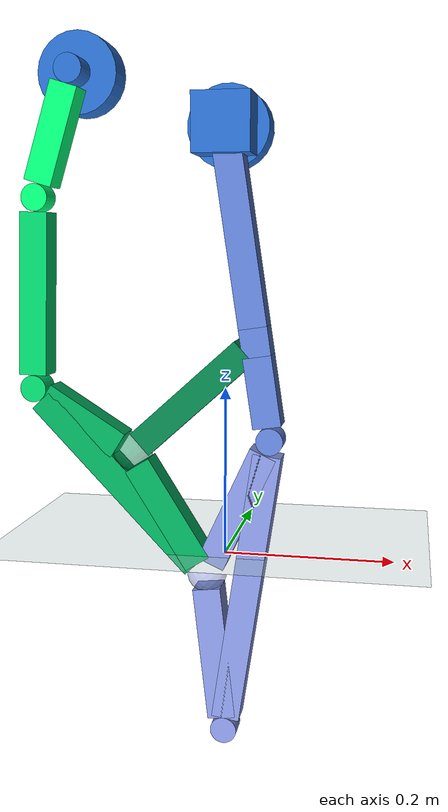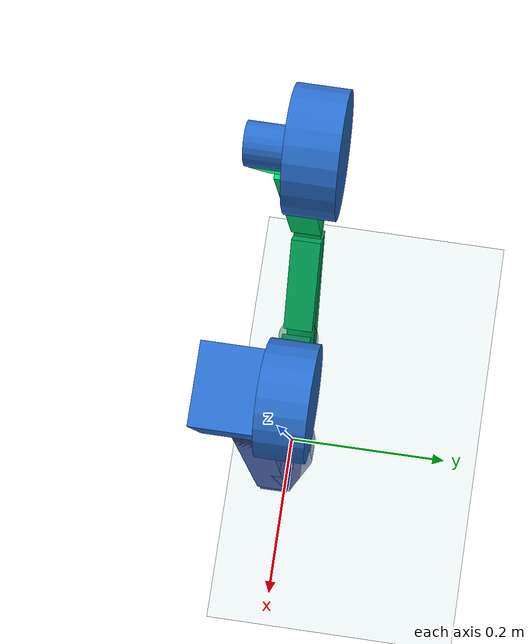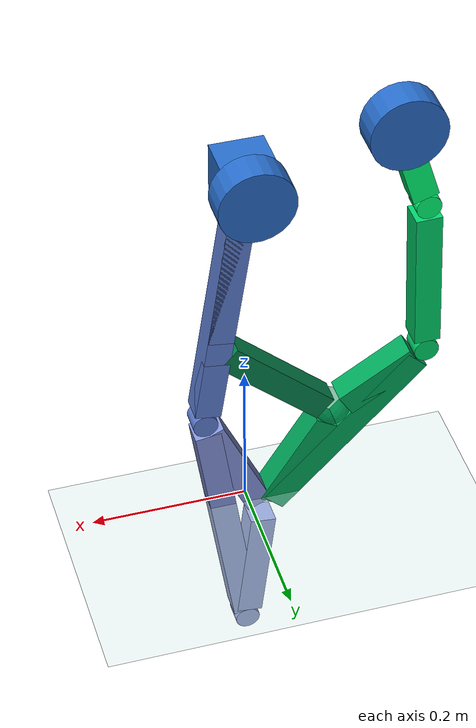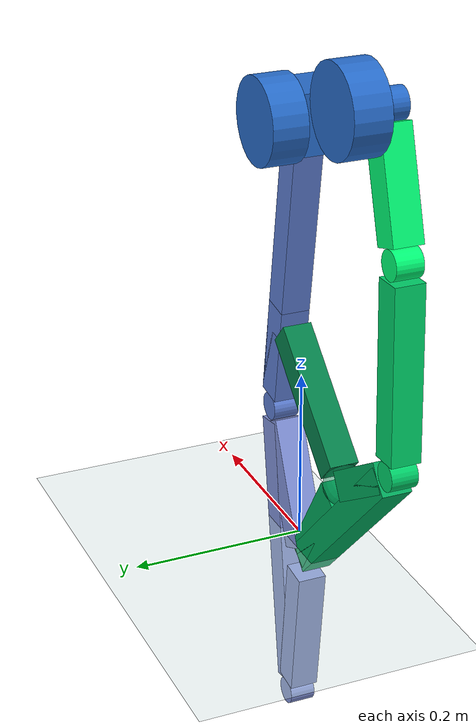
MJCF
<?xml version="1.0" encoding="utf-8"?>
<mujoco model="robot_6">
  <compiler angle="radian" inertiafromgeom="true" coordinate="local" />
  <option timestep="0.01" gravity="0 0 -9.81" integrator="RK4" />
  <size njmax="500" nconmax="100" />
  <worldbody>
    <geom name="floor" type="plane" size="10 10 0.1" pos="0 0 0" rgba="0.8 0.9 0.9 1" />
    <light name="light1" pos="0 0 3" dir="0 0 -1" directional="true" />
    <body name="robot_root" pos="0 0 0.5" quat="1 0 0 0">
      <body name="G">
        <geom name="G_vis0" type="box" rgba="0.1568627450980392 0.42745098039215684 0.8 1.0" contype="1" conaffinity="1" pos="0.0 0.0 0.0" quat="1.0 0.0 0.0 0.0" size="0.0335 0.0335 0.0335" />
        <inertial pos="0.0 0.0 0.0" mass="0.04903493747122909" diaginertia="3.66863057180579e-05 3.66863057180579e-05 3.66863057180579e-05" />
        <body name="L3" pos="0.0 0.0 0.0" quat="0.07437622984429398 5.650851124421949e-17 0.9972302524663743 5.650851124421949e-17">
          <joint name="Main_ground" type="hinge" axis="0 1 0" range="-3.141592653589793 3.141592653589793" damping="0.1" />
          <geom name="L3_vis0" type="box" rgba="0.37254901960784315 0.5019607843137255 0.8352941176470589 1.0" contype="1" conaffinity="1" pos="6.1321225795853815e-18 0.0 0.3057830760522891" quat="1.0 0.0 0.0 0.0" size="0.016750000417232513 0.016750000417232513 0.041494395021298744" />
          <geom name="L3_vis1" type="box" rgba="0.37254901960784315 0.5019607843137255 0.8352941176470589 1.0" contype="1" conaffinity="1" pos="3.974438985929238e-18 0.0 0.12376934030687893" quat="1.0 0.0 0.0 0.0" size="0.016750000417232513 0.016750000417232513 0.10701933988964642" />
          <geom name="L3_vis2" type="box" rgba="0.37254901960784315 0.5019607843137255 0.8352941176470589 1.0" contype="1" conaffinity="1" pos="2.1576835936561436e-18 0.0 0.1820137357454102" quat="1.0 0.0 0.0 0.0" size="0.016750000417232513 0.016750000417232513 0.16526373532817767" />
          <inertial pos="0.0 0.0 0.20386" mass="0.29536707186095634" diaginertia="0.046740090156920405 0.04702657912522108 0.0003417349201298814" />
          <body name="L4" pos="4.315367187312287e-18 0.0 0.3640274714908204" quat="0.9889363528682975 0.0 0.14834045293024475 0.0">
            <joint name="Main_knee" type="hinge" axis="0 1 0" range="-3.141592653589793 3.141592653589793" damping="0.1" />
            <geom name="L4_vis0" type="box" rgba="0.5176470588235295 0.5843137254901961 0.8705882352941177 1.0" contype="1" conaffinity="1" pos="0.025481923004357435 0.0 0.26938032890320707" quat="0.13111872764660734 5.267499460431457e-17 0.9913666724579432 5.267499460431457e-17" size="0.016750000417232513 0.016750000417232513 0.08126739599789375" />
            <geom name="L4_vis1" type="box" rgba="0.5176470588235295 0.5843137254901961 0.8705882352941177 1.0" contype="1" conaffinity="1" pos="6.938893903907228e-18 0.0 0.1820137357454102" quat="1.0 0.0 0.0 0.0" size="0.016750000417232513 0.016750000417232513 0.16526373532817767" />
            <geom name="L4_vis2" type="box" rgba="0.5176470588235295 0.5843137254901961 0.8705882352941177 1.0" contype="1" conaffinity="1" pos="0.02548192300435744 0.0 0.08736659315779688" quat="0.1414213562373094 -5.195736337412961e-17 -0.9899494936611666 5.195736337412961e-17" size="0.016750000417232513 0.016750000417232513 0.07425686745547257" />
            <inertial pos="0.01699 0.0 0.17959" mass="0.5012590142024277" diaginertia="0.2619561188565024 0.26221491311633094 0.0003525505859475547" />
            <body name="EE" pos="0.0 0.0 0.3640274714908204" quat="0.07437622984429398 5.650851124421949e-17 0.9972302524663743 5.650851124421949e-17">
              <geom name="EE_vis0" type="sphere" rgba="0.6431372549019608 0.6666666666666666 0.9058823529411765 1.0" contype="1" conaffinity="1" pos="0.0 0.0 0.0" quat="1.0 0.0 0.0 0.0" size="0.002142857142857143" />
              <inertial pos="0.0 0.0 0.0" mass="2.979933439782622e-05" diaginertia="5.473347134294612e-11 5.473347134294612e-11 5.473347134294612e-11" />
            </body>
            <body name="Main_ee_L4Unit" pos="0.0 0.0 0.3640274714908204" quat="0.0525919364819896 0.0525919364819895 0.7051482739233461 -0.705148273923346">
              <geom name="Main_ee_L4Unit_vis0" type="cylinder" rgba="0.5176470588235295 0.5843137254901961 0.8705882352941177 0.9" contype="1" conaffinity="1" size="0.016 0.015" />
              <inertial pos="0 0 0" mass="0.1" diaginertia="0.00065 0.00065 0.0008" />
            </body>
            <body name="Main_connection_2_L4Pseudo" pos="0.05096384600871484 0.0 0.17473318631559376" quat="0.8980331588121276 0.0 -0.4399277732468274 0.0">
              <geom name="Main_connection_2_L4Pseudo_vis0" type="sphere" rgba="0.5176470588235295 0.5843137254901961 0.8705882352941177 0.5" contype="1" conaffinity="1" size="0.02392857202461788" />
              <inertial pos="0 0 0" mass="0.05" diaginertia="1.145153118274651e-05 1.145153118274651e-05 1.145153118274651e-05" />
            </body>
          </body>
          <body name="Main_knee_L3Unit" pos="4.315367187312287e-18 0.0 0.3640274714908204" quat="0.6992836012750656 0.6992836012750655 0.10489254019125986 -0.10489254019125985">
            <geom name="Main_knee_L3Unit_vis0" type="cylinder" rgba="0.37254901960784315 0.5019607843137255 0.8352941176470589 0.9" contype="1" conaffinity="1" size="0.016 0.015" />
            <inertial pos="0 0 0" mass="0.1" diaginertia="0.00065 0.00065 0.0008" />
          </body>
          <body name="L8" pos="7.948877971858476e-18 0.0 0.24753868061375786" quat="0.8807107787388322 0.0 0.47365443544132435 0.0">
            <joint name="Main_connection_1" type="hinge" axis="0 1 0" range="-3.141592653589793 3.141592653589793" damping="0.1" />
            <geom name="L8_vis0" type="box" rgba="0.01568627450980392 0.5058823529411764 0.29411764705882354 1.0" contype="1" conaffinity="1" pos="-0.0 0.0 0.1009" quat="1.0 0.0 0.0 0.0" size="0.01675 0.01675 0.08415218035305282" />
            <inertial pos="-0.0 0.0 0.1009" mass="0.13655992824415478" diaginertia="0.0003351249810435438 0.0003351249810435438 2.554239657866712e-05" />
            <body name="branch_0_L8Pseudo" pos="0.0 0.0 0.20180436070610566" quat="-0.6966608812115375 8.658629315504744e-17 0.717400597009484 8.658629315504744e-17">
              <geom name="branch_0_L8Pseudo_vis0" type="sphere" rgba="0.01568627450980392 0.5058823529411764 0.29411764705882354 0.5" contype="1" conaffinity="1" size="0.02392857142857143" />
              <inertial pos="0 0 0" mass="0.05" diaginertia="1.1451530612244902e-05 1.1451530612244902e-05 1.1451530612244902e-05" />
            </body>
          </body>
          <body name="Main_connection_1_L3Unit" pos="7.948877971858476e-18 0.0 0.24753868061375786" quat="0.6227565639103132 0.6227565639103133 0.33492426323964625 -0.3349242632396462">
            <geom name="Main_connection_1_L3Unit_vis0" type="cylinder" rgba="0.37254901960784315 0.5019607843137255 0.8352941176470589 0.9" contype="1" conaffinity="1" size="0.016 0.015" />
            <inertial pos="0 0 0" mass="0.1" diaginertia="0.00065 0.00065 0.0008" />
          </body>
        </body>
        <body name="Main_ground_GActuator" pos="0.0 0.03675000041723252 0.0" quat="0.0525919364819896 0.0525919364819895 0.7051482739233461 -0.705148273923346">
          <geom name="Main_ground_GActuator_vis0" type="cylinder" rgba="0.1568627450980392 0.42745098039215684 0.8 0.9" contype="1" conaffinity="1" size="0.048 0.02" />
          <inertial pos="0 0 0" mass="0.44" diaginertia="0.0067466666666666664 0.0067466666666666664 0.01056" />
        </body>
        <body name="Main_ground_GUnit" pos="0.0 0.0 0.0" quat="0.0525919364819896 0.0525919364819895 0.7051482739233461 -0.705148273923346">
          <geom name="Main_ground_GUnit_vis0" type="cylinder" rgba="0.1568627450980392 0.42745098039215684 0.8 0.9" contype="1" conaffinity="1" size="0.016750000417232513 0.016750000417232513" />
          <inertial pos="0 0 0" mass="0.1" diaginertia="0.0006979166840513548 0.0006979166840513548 0.0008375000208616257" />
        </body>
        <body name="L7" pos="-0.18000000000000002 0.0 0.06480000000000001" quat="-0.15086421372374947 6.976927370879126e-17 0.9885544947131214 6.976927370879126e-17">
          <joint name="Ground_connection" type="hinge" axis="0 1 0" range="-3.141592653589793 3.141592653589793" damping="0.1" />
          <geom name="L7_vis0" type="box" rgba="0.0 1.0 0.4666666666666667 1.0" contype="1" conaffinity="1" pos="-0.0 0.0 0.07543" quat="1.0 0.0 0.0 0.0" size="0.01675 0.01675 0.05868374576408096" />
          <inertial pos="-0.0 0.0 0.07543" mass="0.09523042750668785" diaginertia="0.00011822364017562971 0.00011822364017562971 1.7812057878230073e-05" />
          <body name="L6" pos="-5.551115123125783e-17 0.0 0.15086749152816192" quat="0.9908668077066263 0.0 -0.13484424120176491 0.0">
            <joint name="branch_2" type="hinge" axis="0 1 0" range="-3.141592653589793 3.141592653589793" damping="0.1" />
            <geom name="L6_vis0" type="box" rgba="0.0 0.8274509803921568 0.4196078431372549 1.0" contype="1" conaffinity="1" pos="0.0 0.0 0.11308" quat="1.0 0.0 0.0 0.0" size="0.01675 0.01675 0.09632924654860417" />
            <inertial pos="0.0 0.0 0.11308" mass="0.15632054857404132" diaginertia="0.0004981355538131413 0.0004981355538131413 2.9238455939536312e-05" />
            <body name="L5" pos="1.1102230246251565e-16 0.0 0.2261584930972083" quat="0.9221247588124448 0.0 -0.3868926584791841 0.0">
              <joint name="branch_1" type="hinge" axis="0 1 0" range="-3.141592653589793 3.141592653589793" damping="0.1" />
              <geom name="L5_vis0" type="box" rgba="0.0 0.6627450980392157 0.3607843137254902 1.0" contype="1" conaffinity="1" pos="-0.017313186151101806 0.0 0.22013287438567025" quat="0.9948405908123037 0.0 0.10145047497289715 0.0" size="0.016750000417232513 0.016750000417232513 0.06902079181415591" />
              <geom name="L5_vis1" type="box" rgba="0.0 0.6627450980392157 0.3607843137254902 1.0" contype="1" conaffinity="1" pos="-0.017313186151101806 0.0 0.06806381112821479" quat="0.12422055223167687 5.315175785701328e-17 0.9922546318376434 5.315175785701328e-17" size="0.016750000417232513 0.016750000417232513 0.053481251885428294" />
              <geom name="L5_vis2" type="box" rgba="0.0 0.6627450980392157 0.3607843137254902 1.0" contype="1" conaffinity="1" pos="0.0 0.0 0.15206906325745548" quat="1.0 0.0 0.0 0.0" size="0.016750000417232513 0.016750000417232513 0.13531906284022296" />
              <inertial pos="-0.01154 0.0 0.14676" mass="0.37744913378400663" diaginertia="0.11719219359867927 0.12293904243849035 0.005817447558393084" />
              <body name="branch_0_L5Pseudo" pos="-0.03462637230220361 0.0 0.13612762225642958" quat="1.0 0.0 0.0 0.0">
                <joint name="branch_0_L5_revolute" type="hinge" axis="0 1 0" range="-3.141592653589793 3.141592653589793" damping="0.1" />
                <geom name="branch_0_L5Pseudo_vis0" type="sphere" rgba="0.0 0.6627450980392157 0.3607843137254902 0.5" contype="1" conaffinity="1" size="0.02392857202461788" />
                <inertial pos="0 0 0" mass="0.05" diaginertia="1.145153118274651e-05 1.145153118274651e-05 1.145153118274651e-05" />
              </body>
              <body name="Main_connection_2_L5Pseudo" pos="0.0 0.0 0.30413812651491096" quat="1.0 0.0 0.0 0.0">
                <joint name="Main_connection_2_L5_revolute" type="hinge" axis="0 1 0" range="-3.141592653589793 3.141592653589793" damping="0.1" />
                <geom name="Main_connection_2_L5Pseudo_vis0" type="sphere" rgba="0.0 0.6627450980392157 0.3607843137254902 0.5" contype="1" conaffinity="1" size="0.02392857202461788" />
                <inertial pos="0 0 0" mass="0.05" diaginertia="1.145153118274651e-05 1.145153118274651e-05 1.145153118274651e-05" />
              </body>
            </body>
            <body name="branch_1_L6Unit" pos="1.1102230246251565e-16 0.0 0.2261584930972083" quat="0.6520406700562894 0.6520406700562893 -0.27357442240192215 0.273574422401922">
              <geom name="branch_1_L6Unit_vis0" type="cylinder" rgba="0.0 0.8274509803921568 0.4196078431372549 0.9" contype="1" conaffinity="1" size="0.016 0.015" />
              <inertial pos="0 0 0" mass="0.1" diaginertia="0.00065 0.00065 0.0008" />
            </body>
          </body>
          <body name="branch_2_L7Unit" pos="-5.551115123125783e-17 0.0 0.15086749152816192" quat="0.7006486389820223 0.7006486389820222 -0.09534927735772235 0.09534927735772233">
            <geom name="branch_2_L7Unit_vis0" type="cylinder" rgba="0.0 1.0 0.4666666666666667 0.9" contype="1" conaffinity="1" size="0.016 0.015" />
            <inertial pos="0 0 0" mass="0.1" diaginertia="0.00065 0.00065 0.0008" />
          </body>
        </body>
        <body name="Ground_connection_GActuator" pos="-0.18000000000000002 0.036750000000000005 0.06480000000000001" quat="-0.10667710856243973 -0.10667710856243982 0.6990135867840891 -0.6990135867840892">
          <geom name="Ground_connection_GActuator_vis0" type="cylinder" rgba="0.1568627450980392 0.42745098039215684 0.8 0.9" contype="1" conaffinity="1" size="0.048 0.02" />
          <inertial pos="0 0 0" mass="0.44" diaginertia="0.0067466666666666664 0.0067466666666666664 0.01056" />
        </body>
        <body name="Ground_connection_GUnit" pos="-0.18000000000000002 0.0 0.06480000000000001" quat="-0.10667710856243973 -0.10667710856243982 0.6990135867840891 -0.6990135867840892">
          <geom name="Ground_connection_GUnit_vis0" type="cylinder" rgba="0.1568627450980392 0.42745098039215684 0.8 0.9" contype="1" conaffinity="1" size="0.01675 0.01675" />
          <inertial pos="0 0 0" mass="0.1" diaginertia="0.0006979166666666668 0.0006979166666666668 0.0008375000000000001" />
        </body>
      </body>
    </body>
  </worldbody>
  <actuator>
    <motor name="Main_ground_motor" joint="Main_ground" gear="80" ctrlrange="-1.0 1.0" forcerange="-50 50" />
    <motor name="Main_knee_motor" joint="Main_knee" gear="150" ctrlrange="-1.0 1.0" forcerange="-50 50" />
    <motor name="Main_connection_1_motor" joint="Main_connection_1" gear="1" ctrlrange="-1.0 1.0" forcerange="-50 50" />
    <motor name="Ground_connection_motor" joint="Ground_connection" gear="80" ctrlrange="-1.0 1.0" forcerange="-50 50" />
    <motor name="branch_2_motor" joint="branch_2" gear="1" ctrlrange="-1.0 1.0" forcerange="-50 50" />
    <motor name="branch_1_motor" joint="branch_1" gear="1" ctrlrange="-1.0 1.0" forcerange="-50 50" />
    <motor name="branch_0_L5_revolute_motor" joint="branch_0_L5_revolute" gear="1" ctrlrange="-1.0 1.0" forcerange="-50 50" />
    <motor name="Main_connection_2_L5_revolute_motor" joint="Main_connection_2_L5_revolute" gear="1" ctrlrange="-1.0 1.0" forcerange="-50 50" />
  </actuator>
</mujoco>
